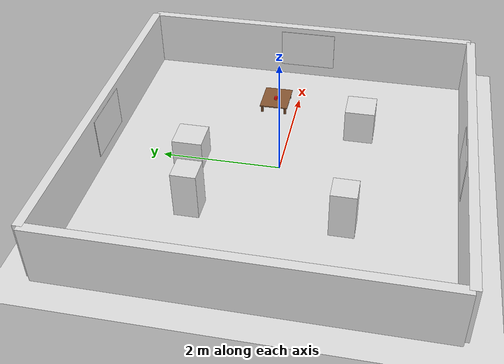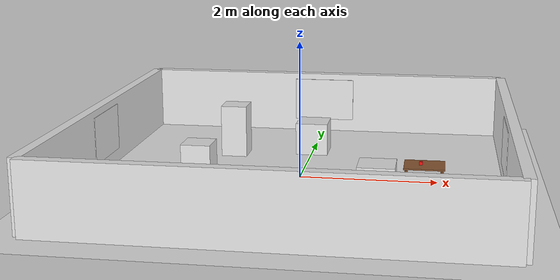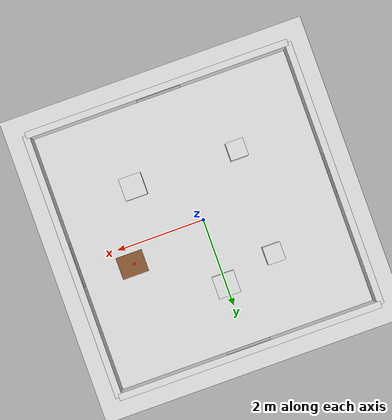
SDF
<?xml version="1.0" ?>
<sdf version="1.8">
  <world name="redbox_sim_world">
    <physics name="1ms" type="ignored">
      <max_step_size>0.001</max_step_size>
      <real_time_factor>1.0</real_time_factor>
    </physics>

    <plugin
      filename="gz-sim-physics-system"
      name="gz::sim::systems::Physics">
    </plugin>
    <plugin
      filename="gz-sim-user-commands-system"
      name="gz::sim::systems::UserCommands">
    </plugin>
    <plugin
      filename="gz-sim-scene-broadcaster-system"
      name="gz::sim::systems::SceneBroadcaster">
    </plugin>
    <plugin
      filename="gz-sim-sensors-system"
      name="gz::sim::systems::Sensors">
      <render_engine>ogre2</render_engine>
    </plugin>
    <plugin
      filename="gz-sim-imu-system"
      name="gz::sim::systems::Imu">
    </plugin>
    <plugin
      filename="gz-sim-contact-system"
      name="gz::sim::systems::Contact">
    </plugin>

    <!-- Default GUI Camera View (Elevated Isometric View of Robot & Desk) -->
    <gui fullscreen="0">
      <camera name="user_camera">
        <pose>-0.2 -1.2 1.6 0 0.55 0.85</pose>
        <view_controller>orbit</view_controller>
      </camera>
    </gui>

    <!-- Sun Light -->
    <light type="directional" name="sun">
      <cast_shadows>true</cast_shadows>
      <pose>0 0 10 0 0 0</pose>
      <diffuse>0.9 0.9 0.9 1</diffuse>
      <specular>0.3 0.3 0.3 1</specular>
      <attenuation>
        <range>1000</range>
        <constant>0.9</constant>
        <linear>0.01</linear>
        <quadratic>0.001</quadratic>
      </attenuation>
      <direction>-0.5 0.1 -0.9</direction>
    </light>

    <!-- Ground Plane with Wood Texture -->
    <model name="ground_plane">
      <static>true</static>
      <link name="link">
        <collision name="collision">
          <geometry>
            <plane>
              <normal>0 0 1</normal>
              <size>100 100</size>
            </plane>
          </geometry>
        </collision>
        <visual name="visual">
          <geometry>
            <plane>
              <normal>0 0 1</normal>
              <size>100 100</size>
            </plane>
          </geometry>
          <material>
            <ambient>0.9 0.9 0.9 1</ambient>
            <diffuse>0.9 0.9 0.9 1</diffuse>
            <pbr>
              <metal>
                <albedo_map>/home/jjj/Documents/Dapier/Project/robot_ws/install/turtlebot3_visual_slam/share/turtlebot3_visual_slam/materials/textures/wood.png</albedo_map>
              </metal>
            </pbr>
          </material>
        </visual>
      </link>
    </model>

    <!-- Room Walls (6m x 6m room) with Brick Texture -->
    <model name="room_walls">
      <static>true</static>
      <!-- North Wall -->
      <link name="wall_north">
        <pose>0 3 0.5 0 0 0</pose>
        <collision name="c">
          <geometry><box><size>6 0.15 1.0</size></box></geometry>
        </collision>
        <visual name="v">
          <geometry><box><size>6 0.15 1.0</size></box></geometry>
          <material>
            <ambient>0.9 0.9 0.9 1</ambient>
            <diffuse>0.9 0.9 0.9 1</diffuse>
            <pbr>
              <metal>
                <albedo_map>/home/jjj/Documents/Dapier/Project/robot_ws/install/turtlebot3_visual_slam/share/turtlebot3_visual_slam/materials/textures/bricks.png</albedo_map>
              </metal>
            </pbr>
          </material>
        </visual>
      </link>
      <!-- South Wall -->
      <link name="wall_south">
        <pose>0 -3 0.5 0 0 0</pose>
        <collision name="c">
          <geometry><box><size>6 0.15 1.0</size></box></geometry>
        </collision>
        <visual name="v">
          <geometry><box><size>6 0.15 1.0</size></box></geometry>
          <material>
            <ambient>0.9 0.9 0.9 1</ambient>
            <diffuse>0.9 0.9 0.9 1</diffuse>
            <pbr>
              <metal>
                <albedo_map>/home/jjj/Documents/Dapier/Project/robot_ws/install/turtlebot3_visual_slam/share/turtlebot3_visual_slam/materials/textures/bricks.png</albedo_map>
              </metal>
            </pbr>
          </material>
        </visual>
      </link>
      <!-- East Wall -->
      <link name="wall_east">
        <pose>3 0 0.5 0 0 0</pose>
        <collision name="c">
          <geometry><box><size>0.15 6 1.0</size></box></geometry>
        </collision>
        <visual name="v">
          <geometry><box><size>0.15 6 1.0</size></box></geometry>
          <material>
            <ambient>0.9 0.9 0.9 1</ambient>
            <diffuse>0.9 0.9 0.9 1</diffuse>
            <pbr>
              <metal>
                <albedo_map>/home/jjj/Documents/Dapier/Project/robot_ws/install/turtlebot3_visual_slam/share/turtlebot3_visual_slam/materials/textures/bricks.png</albedo_map>
              </metal>
            </pbr>
          </material>
        </visual>
      </link>
      <!-- West Wall -->
      <link name="wall_west">
        <pose>-3 0 0.5 0 0 0</pose>
        <collision name="c">
          <geometry><box><size>0.15 6 1.0</size></box></geometry>
        </collision>
        <visual name="v">
          <geometry><box><size>0.15 6 1.0</size></box></geometry>
          <material>
            <ambient>0.9 0.9 0.9 1</ambient>
            <diffuse>0.9 0.9 0.9 1</diffuse>
            <pbr>
              <metal>
                <albedo_map>/home/jjj/Documents/Dapier/Project/robot_ws/install/turtlebot3_visual_slam/share/turtlebot3_visual_slam/materials/textures/bricks.png</albedo_map>
              </metal>
            </pbr>
          </material>
        </visual>
      </link>
    </model>

    <!-- Wall Landmark Poster: North Wall (Unique Blue-Yellow Diamond) -->
    <model name="poster_north">
      <static>true</static>
      <pose>0 2.92 0.55 0 0 0</pose>
      <link name="link">
        <visual name="v">
          <geometry><box><size>1.0 0.01 0.7</size></box></geometry>
          <material>
            <ambient>0.9 0.9 0.9 1</ambient>
            <diffuse>0.9 0.9 0.9 1</diffuse>
            <pbr>
              <metal>
                <albedo_map>/home/jjj/Documents/Dapier/Project/robot_ws/install/turtlebot3_visual_slam/share/turtlebot3_visual_slam/materials/textures/landmark_north.png</albedo_map>
              </metal>
            </pbr>
          </material>
        </visual>
      </link>
    </model>

    <!-- Wall Landmark Poster: South Wall (Unique Yellow-Black Hazard & Target) -->
    <model name="poster_south">
      <static>true</static>
      <pose>0 -2.92 0.55 0 0 0</pose>
      <link name="link">
        <visual name="v">
          <geometry><box><size>1.0 0.01 0.7</size></box></geometry>
          <material>
            <ambient>0.9 0.9 0.9 1</ambient>
            <diffuse>0.9 0.9 0.9 1</diffuse>
            <pbr>
              <metal>
                <albedo_map>/home/jjj/Documents/Dapier/Project/robot_ws/install/turtlebot3_visual_slam/share/turtlebot3_visual_slam/materials/textures/landmark_south.png</albedo_map>
              </metal>
            </pbr>
          </material>
        </visual>
      </link>
    </model>

    <!-- Wall Landmark Poster: East Wall (Unique Purple-Orange Cross) -->
    <model name="poster_east">
      <static>true</static>
      <pose>2.92 0 0.55 0 0 0</pose>
      <link name="link">
        <visual name="v">
          <geometry><box><size>0.01 1.0 0.7</size></box></geometry>
          <material>
            <ambient>0.9 0.9 0.9 1</ambient>
            <diffuse>0.9 0.9 0.9 1</diffuse>
            <pbr>
              <metal>
                <albedo_map>/home/jjj/Documents/Dapier/Project/robot_ws/install/turtlebot3_visual_slam/share/turtlebot3_visual_slam/materials/textures/landmark_east.png</albedo_map>
              </metal>
            </pbr>
          </material>
        </visual>
      </link>
    </model>

    <!-- Wall Landmark Poster: West Wall (Unique Green-Zebra Triangle) -->
    <model name="poster_west">
      <static>true</static>
      <pose>-2.92 0 0.55 0 0 0</pose>
      <link name="link">
        <visual name="v">
          <geometry><box><size>0.01 1.0 0.7</size></box></geometry>
          <material>
            <ambient>0.9 0.9 0.9 1</ambient>
            <diffuse>0.9 0.9 0.9 1</diffuse>
            <pbr>
              <metal>
                <albedo_map>/home/jjj/Documents/Dapier/Project/robot_ws/install/turtlebot3_visual_slam/share/turtlebot3_visual_slam/materials/textures/landmark_west.png</albedo_map>
              </metal>
            </pbr>
          </material>
        </visual>
      </link>
    </model>

    <!-- STRUCTURE 1: Checkerboard Landmark Pillar (NW quadrant) -->
    <model name="pillar_checkerboard_nw">
      <static>true</static>
      <pose>-1.2 1.2 0.4 0 0 0</pose>
      <link name="link">
        <collision name="c">
          <geometry><box><size>0.4 0.4 0.8</size></box></geometry>
        </collision>
        <visual name="v">
          <geometry><box><size>0.4 0.4 0.8</size></box></geometry>
          <material>
            <ambient>0.9 0.9 0.9 1</ambient>
            <diffuse>0.9 0.9 0.9 1</diffuse>
            <pbr>
              <metal>
                <albedo_map>/home/jjj/Documents/Dapier/Project/robot_ws/install/turtlebot3_visual_slam/share/turtlebot3_visual_slam/materials/textures/checkerboard.png</albedo_map>
              </metal>
            </pbr>
          </material>
        </visual>
      </link>
    </model>

    <!-- STRUCTURE 2: Brick Pillar Divider (SW quadrant) -->
    <model name="pillar_brick_sw">
      <static>true</static>
      <pose>-1.2 -1.2 0.4 0 0 0</pose>
      <link name="link">
        <collision name="c">
          <geometry><box><size>0.4 0.4 0.8</size></box></geometry>
        </collision>
        <visual name="v">
          <geometry><box><size>0.4 0.4 0.8</size></box></geometry>
          <material>
            <ambient>0.9 0.9 0.9 1</ambient>
            <diffuse>0.9 0.9 0.9 1</diffuse>
            <pbr>
              <metal>
                <albedo_map>/home/jjj/Documents/Dapier/Project/robot_ws/install/turtlebot3_visual_slam/share/turtlebot3_visual_slam/materials/textures/bricks.png</albedo_map>
              </metal>
            </pbr>
          </material>
        </visual>
      </link>
    </model>

    <!-- STRUCTURE 3: Textured Wooden Box (SE quadrant) -->
    <model name="box_wood_se">
      <static>true</static>
      <pose>1.2 -1.2 0.3 0 0 0</pose>
      <link name="link">
        <collision name="c">
          <geometry><box><size>0.5 0.5 0.6</size></box></geometry>
        </collision>
        <visual name="v">
          <geometry><box><size>0.5 0.5 0.6</size></box></geometry>
          <material>
            <ambient>0.9 0.9 0.9 1</ambient>
            <diffuse>0.9 0.9 0.9 1</diffuse>
            <pbr>
              <metal>
                <albedo_map>/home/jjj/Documents/Dapier/Project/robot_ws/install/turtlebot3_visual_slam/share/turtlebot3_visual_slam/materials/textures/wood.png</albedo_map>
              </metal>
            </pbr>
          </material>
        </visual>
      </link>
    </model>

    <!-- STRUCTURE 4: Checkerboard Box (Center-North) -->
    <model name="box_checkerboard_cn">
      <static>true</static>
      <pose>0.0 1.5 0.25 0 0 0</pose>
      <link name="link">
        <collision name="c">
          <geometry><box><size>0.5 0.5 0.5</size></box></geometry>
        </collision>
        <visual name="v">
          <geometry><box><size>0.5 0.5 0.5</size></box></geometry>
          <material>
            <ambient>0.9 0.9 0.9 1</ambient>
            <diffuse>0.9 0.9 0.9 1</diffuse>
            <pbr>
              <metal>
                <albedo_map>/home/jjj/Documents/Dapier/Project/robot_ws/install/turtlebot3_visual_slam/share/turtlebot3_visual_slam/materials/textures/checkerboard.png</albedo_map>
              </metal>
            </pbr>
          </material>
        </visual>
      </link>
    </model>

    <!-- WORKSPACE DESK: Brown Desk (TurtleBot3 height ~0.15m) -->
    <model name="brown_desk">
      <static>true</static>
      <pose>1.8 0.4 0.0 0 0 0</pose>
      <link name="table_link">
        <!-- Table Top (Surface at Z = 0.15m) -->
        <collision name="top_collision">
          <pose>0 0 0.14 0 0 0</pose>
          <geometry><box><size>0.6 0.5 0.02</size></box></geometry>
        </collision>
        <visual name="top_visual">
          <pose>0 0 0.14 0 0 0</pose>
          <geometry><box><size>0.6 0.5 0.02</size></box></geometry>
          <material>
            <ambient>0.42 0.26 0.15 1.0</ambient>
            <diffuse>0.55 0.35 0.20 1.0</diffuse>
            <specular>0.2 0.12 0.08 1.0</specular>
          </material>
        </visual>

        <!-- Leg 1: Front-Left -->
        <collision name="leg_fl_collision">
          <pose>0.26 0.21 0.065 0 0 0</pose>
          <geometry><box><size>0.04 0.04 0.13</size></box></geometry>
        </collision>
        <visual name="leg_fl_visual">
          <pose>0.26 0.21 0.065 0 0 0</pose>
          <geometry><box><size>0.04 0.04 0.13</size></box></geometry>
          <material>
            <ambient>0.35 0.22 0.12 1.0</ambient>
            <diffuse>0.45 0.28 0.15 1.0</diffuse>
          </material>
        </visual>

        <!-- Leg 2: Front-Right -->
        <collision name="leg_fr_collision">
          <pose>0.26 -0.21 0.065 0 0 0</pose>
          <geometry><box><size>0.04 0.04 0.13</size></box></geometry>
        </collision>
        <visual name="leg_fr_visual">
          <pose>0.26 -0.21 0.065 0 0 0</pose>
          <geometry><box><size>0.04 0.04 0.13</size></box></geometry>
          <material>
            <ambient>0.35 0.22 0.12 1.0</ambient>
            <diffuse>0.45 0.28 0.15 1.0</diffuse>
          </material>
        </visual>

        <!-- Leg 3: Back-Left -->
        <collision name="leg_bl_collision">
          <pose>-0.26 0.21 0.065 0 0 0</pose>
          <geometry><box><size>0.04 0.04 0.13</size></box></geometry>
        </collision>
        <visual name="leg_bl_visual">
          <pose>-0.26 0.21 0.065 0 0 0</pose>
          <geometry><box><size>0.04 0.04 0.13</size></box></geometry>
          <material>
            <ambient>0.35 0.22 0.12 1.0</ambient>
            <diffuse>0.45 0.28 0.15 1.0</diffuse>
          </material>
        </visual>

        <!-- Leg 4: Back-Right -->
        <collision name="leg_br_collision">
          <pose>-0.26 -0.21 0.065 0 0 0</pose>
          <geometry><box><size>0.04 0.04 0.13</size></box></geometry>
        </collision>
        <visual name="leg_br_visual">
          <pose>-0.26 -0.21 0.065 0 0 0</pose>
          <geometry><box><size>0.04 0.04 0.13</size></box></geometry>
          <material>
            <ambient>0.35 0.22 0.12 1.0</ambient>
            <diffuse>0.45 0.28 0.15 1.0</diffuse>
          </material>
        </visual>
      </link>
    </model>

    <!-- TARGET OBJECT: Small Red Block (50mm x 50mm x 50mm) on Brown Desk -->
    <model name="small_red_block">
      <static>true</static>
      <pose>1.75 0.4 0.175 0 0 0</pose>
      <link name="link">
        <collision name="collision">
          <geometry>
            <box>
              <size>0.05 0.05 0.05</size>
            </box>
          </geometry>
        </collision>
        <visual name="visual">
          <geometry>
            <box>
              <size>0.05 0.05 0.05</size>
            </box>
          </geometry>
          <material>
            <ambient>0.85 0.0 0.0 1.0</ambient>
            <diffuse>1.0 0.05 0.05 1.0</diffuse>
            <specular>0.5 0.2 0.2 1.0</specular>
          </material>
        </visual>
      </link>
    </model>

  </world>
</sdf>
